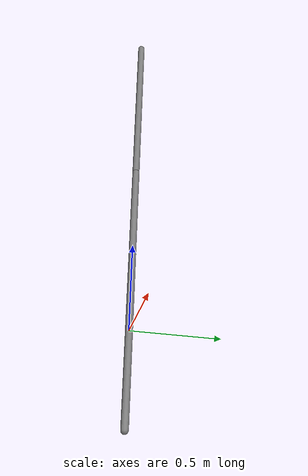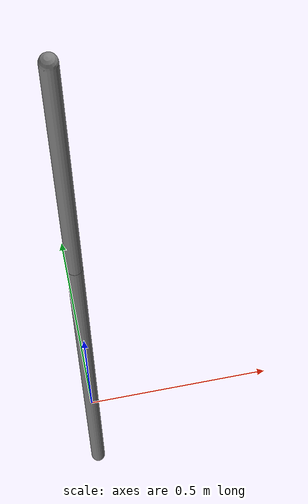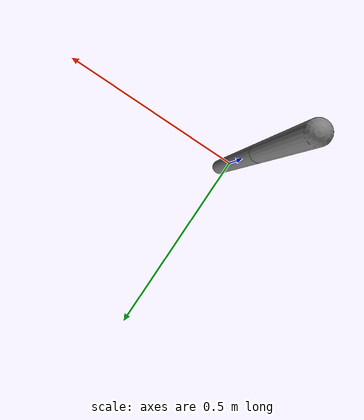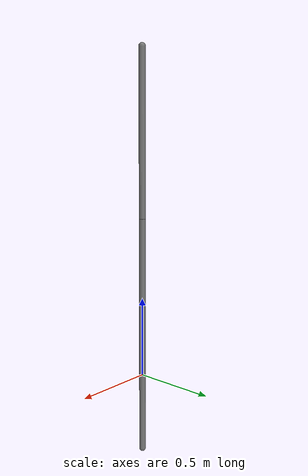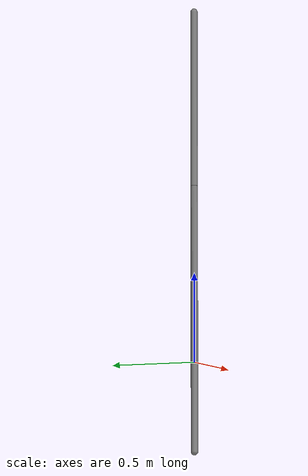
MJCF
<mujoco model="double_pendulum_long">
  <option gravity="0 0 -9.81" timestep="0.001"/>
  <worldbody>
    <body name="rod1" pos="0 0 2">
      <joint name="hinge1" type="hinge" axis="0 1 0" pos="0 0 0"/>
      <inertial pos="0 0 -0.5" mass="1.0" diaginertia="0.0833333 0.0833333 0.0001"/>
      <geom name="rod1_geom" type="capsule" fromto="0 0 0  0 0 -1" size="0.02"/>
      <body name="rod2" pos="0 0 -1">
        <joint name="hinge2" type="hinge" axis="0 1 0" pos="0 0 0"/>
        <inertial pos="0 0 -0.75" mass="1.5" diaginertia="0.28125 0.28125 0.0001"/>
        <geom name="rod2_geom" type="capsule" fromto="0 0 0  0 0 -1.5" size="0.02"/>
      </body>
    </body>
  </worldbody>
</mujoco>
